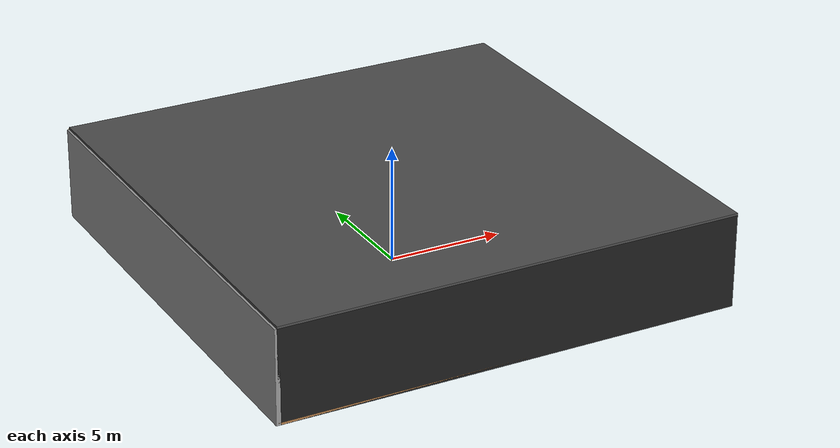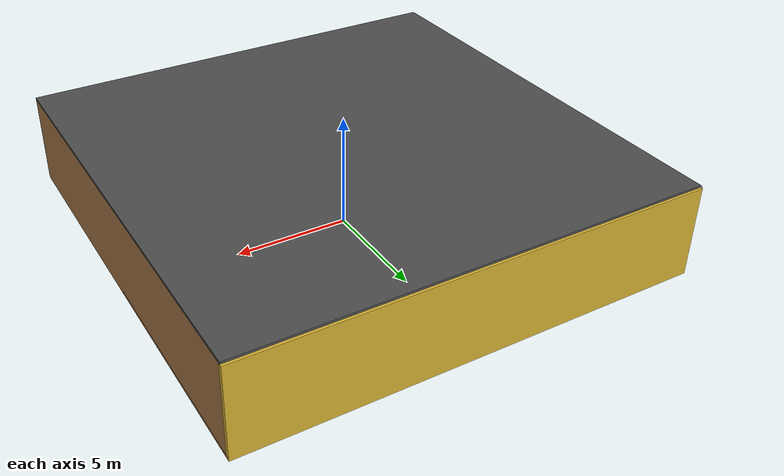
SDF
<sdf version="1.4">
 <world name="default">
  <physics type="ode">
   <max_step_size>0.001</max_step_size>
   <real_time_factor>1</real_time_factor>
   <real_time_update_rate>1000</real_time_update_rate>
   <gravity>0 0 -9.8</gravity>
  </physics>
  <scene><ambient>0.4 0.4 0.4 1</ambient><background>0.7 0.7 0.7 1</background><shadows>1</shadows></scene>
  <model name="Surrounding">
   <static>1</static>
   <link name="Ceiling">
    <collision name="Ceiling_Collision"><geometry><box><size>20 20 0.1</size></box></geometry></collision>
    <visual name="Ceiling_Visual">
     <geometry><box><size>20 20 0.1</size></box></geometry>
     <material>
      <script><uri>file://media/materials/scripts/gazebo.material</uri><name>Gazebo/Road</name></script>
     </material>
    </visual>
    <pose>0 0 4.05 0 0 0</pose>
   </link>
   <link name="Wall_South">
    <collision name="Wall_South_Collision">
     <geometry><box><size>20 0 4</size></box></geometry>
     <pose>0 0 2 0 -0 0</pose>
    </collision>
    <visual name="Wall_South_Visual">
     <pose>0 0 2 0 -0 0</pose>
     <geometry><box><size>20 0 4</size></box></geometry>
     <material>
      <script><uri>file://media/materials/scripts/gazebo.material</uri><name>Gazebo/FlatBlack</name></script>
     </material>
    </visual>
    <velocity_decay><linear>0</linear><angular>0</angular></velocity_decay>
    <pose>0 -10 0 0 -0 0</pose>
   </link>
   <link name="Wall_East">
    <collision name="Wall_21_Collision">
     <geometry><box><size>20 0 4</size></box></geometry>
     <pose>0 0 2 0 -0 0</pose>
    </collision>
    <visual name="Wall_21_Visual">
     <pose>0 0 2 0 -0 0</pose>
     <geometry><box><size>20 0 4</size></box></geometry>
     <material>
      <script><uri>file://media/materials/scripts/gazebo.material</uri><name>Gazebo/WoodPallet</name></script>
     </material>
    </visual>
    <velocity_decay><linear>0</linear><angular>0</angular></velocity_decay>
    <pose>10 0 0 0 -0 1.5708</pose>
   </link>
   <link name="Wall_North">
    <collision name="Wall_22_Collision">
     <geometry><box><size>20 0.2 4</size></box></geometry>
     <pose>0 0 2 0 -0 0</pose>
    </collision>
    <visual name="Wall_22_Visual">
     <pose>0 0 2 0 -0 0</pose>
     <geometry><box><size>20 0.2 4</size></box></geometry>
     <material>
      <script><uri>file://media/materials/scripts/gazebo.material</uri><name>Gazebo/Gold</name></script>
     </material>
    </visual>
    <velocity_decay><linear>0</linear><angular>0</angular></velocity_decay>
    <pose>0 10 0 0 -0 0</pose>
   </link>
   <link name="Wall_West">
    <collision name="Wall_23_Collision">
     <geometry><box><size>20 0.2 4</size></box></geometry>
     <pose>0 0 2 0 -0 0</pose>
    </collision>
    <visual name="Wall_23_Visual">
     <pose>0 0 2 0 -0 0</pose>
     <geometry><box><size>20 0.2 4</size></box></geometry>
     <material>
      <script><uri>file://media/materials/scripts/gazebo.material</uri><name>Gazebo/Grey</name></script>
     </material>
    </visual>
    <velocity_decay><linear>0</linear><angular>0</angular></velocity_decay>
    <pose>-10 0 0 0 0 -1.5708</pose>
   </link>
   <link name="Ground_link">
    <collision name="collision">
     <pose>0 0 .05 0 -0 0</pose>
     <geometry><box><size>20 20 0.1</size></box></geometry>
    </collision>
    <visual name="visual">
     <pose>0 0 .05 0 -0 0</pose>
     <geometry><box><size>20 20 0.1</size></box></geometry>
     <material>
      <script><uri>file://media/materials/scripts/gazebo.material</uri><name>Gazebo/WoodPallet</name></script>
     </material>
    </visual>
   </link>
   <static>1</static>
  </model>
  <spherical_coordinates>
   <surface_model>EARTH_WGS84</surface_model>
   <latitude_deg>0</latitude_deg>
   <longitude_deg>0</longitude_deg>
   <elevation>0</elevation>
   <heading_deg>0</heading_deg>
  </spherical_coordinates>
  <light name="lightball_0" type="diffuse">
   <diffuse>0.8 0.8 0.8 1</diffuse>
   <specular>0.2 0.2 0.2 1</specular>
   <attenuation>
    <range>100</range>
    <constant>0.7</constant>
    <linear>0.01</linear>
    <quadratic>0.001</quadratic>
   </attenuation>
   <direction>-0.5 0.1 -0.9</direction>
   <pose>4.670535682 3.35538823793 1.07701045946 0 0 0</pose>
  </light>
  <light name="lightball_1" type="diffuse">
   <diffuse>0.8 0.8 0.8 1</diffuse>
   <specular>0.2 0.2 0.2 1</specular>
   <attenuation>
    <range>100</range>
    <constant>0.7</constant>
    <linear>0.01</linear>
    <quadratic>0.001</quadratic>
   </attenuation>
   <direction>-0.5 0.1 -0.9</direction>
   <pose>7.19023421513 3.34421855786 2.08110879706 0 0 0</pose>
  </light>
  <light name="lightball_2" type="diffuse">
   <diffuse>0.8 0.8 0.8 1</diffuse>
   <specular>0.2 0.2 0.2 1</specular>
   <attenuation>
    <range>100</range>
    <constant>0.7</constant>
    <linear>0.01</linear>
    <quadratic>0.001</quadratic>
   </attenuation>
   <direction>-0.5 0.1 -0.9</direction>
   <pose>-4.35918316932 -7.38716698542 1.37079365291 0 0 0</pose>
  </light>
  <light name="lightball_3" type="diffuse">
   <diffuse>0.8 0.8 0.8 1</diffuse>
   <specular>0.2 0.2 0.2 1</specular>
   <attenuation>
    <range>100</range>
    <constant>0.7</constant>
    <linear>0.01</linear>
    <quadratic>0.001</quadratic>
   </attenuation>
   <direction>-0.5 0.1 -0.9</direction>
   <pose>2.99853240388 -9.29846418608 3.26567934377 0 0 0</pose>
  </light>
  <light name="lightball_4" type="diffuse">
   <diffuse>0.8 0.8 0.8 1</diffuse>
   <specular>0.2 0.2 0.2 1</specular>
   <attenuation>
    <range>100</range>
    <constant>0.7</constant>
    <linear>0.01</linear>
    <quadratic>0.001</quadratic>
   </attenuation>
   <direction>-0.5 0.1 -0.9</direction>
   <pose>-8.10080953296 -8.78956583469 2.53580956276 0 0 0</pose>
  </light>
  <light name="lightball_5" type="diffuse">
   <diffuse>0.8 0.8 0.8 1</diffuse>
   <specular>0.2 0.2 0.2 1</specular>
   <attenuation>
    <range>100</range>
    <constant>0.7</constant>
    <linear>0.01</linear>
    <quadratic>0.001</quadratic>
   </attenuation>
   <direction>-0.5 0.1 -0.9</direction>
   <pose>-5.23644273463 1.05423782765 3.63162161116 0 0 0</pose>
  </light>
  <light name="lightball_6" type="diffuse">
   <diffuse>0.8 0.8 0.8 1</diffuse>
   <specular>0.2 0.2 0.2 1</specular>
   <attenuation>
    <range>100</range>
    <constant>0.7</constant>
    <linear>0.01</linear>
    <quadratic>0.001</quadratic>
   </attenuation>
   <direction>-0.5 0.1 -0.9</direction>
   <pose>3.22951867783 -1.52819210657 1.18383274424 0 0 0</pose>
  </light>
  <light name="lightball_7" type="diffuse">
   <diffuse>0.8 0.8 0.8 1</diffuse>
   <specular>0.2 0.2 0.2 1</specular>
   <attenuation>
    <range>100</range>
    <constant>0.7</constant>
    <linear>0.01</linear>
    <quadratic>0.001</quadratic>
   </attenuation>
   <direction>-0.5 0.1 -0.9</direction>
   <pose>1.11288941308 5.51236257011 2.42955596633 0 0 0</pose>
  </light>
  <light name="lightball_8" type="diffuse">
   <diffuse>0.8 0.8 0.8 1</diffuse>
   <specular>0.2 0.2 0.2 1</specular>
   <attenuation>
    <range>100</range>
    <constant>0.7</constant>
    <linear>0.01</linear>
    <quadratic>0.001</quadratic>
   </attenuation>
   <direction>-0.5 0.1 -0.9</direction>
   <pose>-2.9359103745 -0.184671942982 1.01398777418 0 0 0</pose>
  </light>
  <light name="lightball_9" type="diffuse">
   <diffuse>0.8 0.8 0.8 1</diffuse>
   <specular>0.2 0.2 0.2 1</specular>
   <attenuation>
    <range>100</range>
    <constant>0.7</constant>
    <linear>0.01</linear>
    <quadratic>0.001</quadratic>
   </attenuation>
   <direction>-0.5 0.1 -0.9</direction>
   <pose>1.70876813102 0.562633939044 1.54967685274 0 0 0</pose>
  </light>
  <light name="lightball_10" type="diffuse">
   <diffuse>0.8 0.8 0.8 1</diffuse>
   <specular>0.2 0.2 0.2 1</specular>
   <attenuation>
    <range>100</range>
    <constant>0.7</constant>
    <linear>0.01</linear>
    <quadratic>0.001</quadratic>
   </attenuation>
   <direction>-0.5 0.1 -0.9</direction>
   <pose>-0.521019412657 -1.402812793 3.24765934817 0 0 0</pose>
  </light>
  <light name="lightball_11" type="diffuse">
   <diffuse>0.8 0.8 0.8 1</diffuse>
   <specular>0.2 0.2 0.2 1</specular>
   <attenuation>
    <range>100</range>
    <constant>0.7</constant>
    <linear>0.01</linear>
    <quadratic>0.001</quadratic>
   </attenuation>
   <direction>-0.5 0.1 -0.9</direction>
   <pose>0.0696357933453 -1.51006247542 3.32742756264 0 0 0</pose>
  </light>
  <light name="lightball_12" type="diffuse">
   <diffuse>0.8 0.8 0.8 1</diffuse>
   <specular>0.2 0.2 0.2 1</specular>
   <attenuation>
    <range>100</range>
    <constant>0.7</constant>
    <linear>0.01</linear>
    <quadratic>0.001</quadratic>
   </attenuation>
   <direction>-0.5 0.1 -0.9</direction>
   <pose>-2.61473822572 -4.98930388849 0.837477595106 0 0 0</pose>
  </light>
  <light name="lightball_13" type="diffuse">
   <diffuse>0.8 0.8 0.8 1</diffuse>
   <specular>0.2 0.2 0.2 1</specular>
   <attenuation>
    <range>100</range>
    <constant>0.7</constant>
    <linear>0.01</linear>
    <quadratic>0.001</quadratic>
   </attenuation>
   <direction>-0.5 0.1 -0.9</direction>
   <pose>-7.31501952054 -2.97302791595 3.29991057386 0 0 0</pose>
  </light>
  <include><uri>model://table</uri><pose>-7.59341123761 -6.91949858143 0 0 0 0.751912963133</pose></include>
  <include><uri>model://cabinet</uri><pose>-4.10075158483 -1.80247829027 0 0 0 0.281549820063</pose></include>
  <include><uri>model://cabinet</uri><pose>-0.85496463331 4.15140819931 0 0 0 0.873105150449</pose></include>
  <include><uri>model://cabinet</uri><pose>1.41582942454 -4.91491825972 0 0 0 1.74119111678</pose></include>
  <include><uri>model://cabinet</uri><pose>3.75656891365 1.77333846181 0 0 0 1.54581586459</pose></include>
 </world>
</sdf>

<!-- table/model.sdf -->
<sdf version="1.5">
  <model name="table">
    <static>true</static>
    <link name="link">
      <collision name="surface">
        <pose>0 0 1.0 0 0 0</pose>
        <geometry>
          <box>
            <size>1.5 0.8 0.03</size>
          </box>
        </geometry>
        <surface>
          <friction>
            <ode>
              <mu>0.6</mu>
              <mu2>0.6</mu2>
            </ode>
          </friction>
        </surface>
      </collision>
      <visual name="visual1">
        <pose>0 0 1.0 0 0 0</pose>
        <geometry>
          <box>
            <size>1.5 0.8 0.03</size>
          </box>
        </geometry>
        <material>
          <script>
            <uri>model://media/materials/scripts/gazebo.material</uri>
            <name>Gazebo/Wood</name>
          </script>
        </material>
      </visual>
      <collision name="front_left_leg">
        <pose>0.68 0.38 0.5 0 0 0</pose>
        <geometry>
          <cylinder>
            <radius>0.02</radius>
            <length>1.0</length>
          </cylinder>
        </geometry>
      </collision>
      <visual name="front_left_leg">
        <pose>0.68 0.38 0.5 0 0 0</pose>
        <geometry>
          <cylinder>
            <radius>0.02</radius>
            <length>1.0</length>
          </cylinder>
        </geometry>
        <material>
          <script>
            <uri>model://media/materials/scripts/gazebo.material</uri>
            <name>Gazebo/Grey</name>
          </script>
        </material>
      </visual>
      <collision name="front_right_leg">
        <pose>0.68 -0.38 0.5 0 0 0</pose>
        <geometry>
          <cylinder>
            <radius>0.02</radius>
            <length>1.0</length>
          </cylinder>
        </geometry>
      </collision>
      <visual name="front_right_leg">
        <pose>0.68 -0.38 0.5 0 0 0</pose>
        <geometry>
          <cylinder>
            <radius>0.02</radius>
            <length>1.0</length>
          </cylinder>
        </geometry>
        <material>
          <script>
            <uri>model://media/materials/scripts/gazebo.material</uri>
            <name>Gazebo/Grey</name>
          </script>
        </material>
      </visual>
      <collision name="back_right_leg">
        <pose>-0.68 -0.38 0.5 0 0 0</pose>
        <geometry>
          <cylinder>
            <radius>0.02</radius>
            <length>1.0</length>
          </cylinder>
        </geometry>
      </collision>
      <visual name="back_right_leg">
        <pose>-0.68 -0.38 0.5 0 0 0</pose>
        <geometry>
          <cylinder>
            <radius>0.02</radius>
            <length>1.0</length>
          </cylinder>
        </geometry>
        <material>
          <script>
            <uri>model://media/materials/scripts/gazebo.material</uri>
            <name>Gazebo/Grey</name>
          </script>
        </material>
      </visual>
      <collision name="back_left_leg">
        <pose>-0.68 0.38 0.5 0 0 0</pose>
        <geometry>
          <cylinder>
            <radius>0.02</radius>
            <length>1.0</length>
          </cylinder>
        </geometry>
      </collision>
      <visual name="back_left_leg">
        <pose>-0.68 0.38 0.5 0 0 0</pose>
        <geometry>
          <cylinder>
            <radius>0.02</radius>
            <length>1.0</length>
          </cylinder>
        </geometry>
        <material>
          <script>
            <uri>model://media/materials/scripts/gazebo.material</uri>
            <name>Gazebo/Grey</name>
          </script>
        </material>
      </visual>
    </link>
  </model>
</sdf>

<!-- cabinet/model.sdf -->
<sdf version="1.5">
  <model name="cabinet">
    <static>true</static>
    <link name="cabinet_bottom_plate">
      <inertial>
        <pose>0 0 -1 0 0 0</pose>
        <inertia>
          <ixx>2.050000</ixx>
          <ixy>0</ixy>
          <ixz>0</ixz>
          <iyy>2.050000</iyy>
          <iyz>0</iyz>
          <izz>2.050000</izz>
        </inertia>
        <mass>25.000000</mass>
      </inertial>
      <collision name="cabinet_bottom_plate_geom">
        <pose>0 0 0.010000 0 0 0</pose>
        <geometry>
          <box>
            <size>0.450000 0.450000 0.020000</size>
          </box>
        </geometry>
      </collision>
      <visual name="cabinet_bottom_plate_geom_visual">
        <pose>0 0 0.010000 0 0 0</pose>
        <geometry>
          <box>
            <size>0.450000 0.450000 0.020000</size>
          </box>
        </geometry>
        <material>
          <script>
            <uri>model://media/materials/scripts/gazebo.material</uri>
            <name>Gazebo/Wood</name>
          </script>
        </material>
      </visual>
      <collision name="cabinet_bottom_plate_geom_cabinet_back_plate">
        <pose>0.235000 0 0.510000 0 0 0</pose>
        <geometry>
          <box>
            <size>0.020000 0.450000 1.020000</size>
          </box>
        </geometry>
      </collision>
      <visual name="cabinet_bottom_plate_geom_cabinet_back_plate_visual">
        <pose>0.235000 0 0.510000 0 0 0</pose>
        <geometry>
          <box>
            <size>0.020000 0.450000 1.020000</size>
          </box>
        </geometry>
        <material>
          <script>
            <uri>model://media/materials/scripts/gazebo.material</uri>
            <name>Gazebo/Wood</name>
          </script>
        </material>
      </visual>
      <collision name="cabinet_bottom_plate_geom_cabinet_left_plate">
        <pose>0 0.235000 0.510000 0 0 0</pose>
        <geometry>
          <box>
            <size>0.450000 0.020000 1.020000</size>
          </box>
        </geometry>
      </collision>
      <visual name="cabinet_bottom_plate_geom_cabinet_left_plate_visual">
        <pose>0 0.235000 0.510000 0 0 0</pose>
        <geometry>
          <box>
            <size>0.450000 0.020000 1.020000</size>
          </box>
        </geometry>
        <material>
          <script>
            <uri>model://media/materials/scripts/gazebo.material</uri>
            <name>Gazebo/Wood</name>
          </script>
        </material>
      </visual>
      <collision name="cabinet_bottom_plate_geom_cabinet_middle_plate">
        <pose>0 0 0.510000 0 0 0</pose>
        <geometry>
          <box>
            <size>0.450000 0.450000 0.020000</size>
          </box>
        </geometry>
      </collision>
      <visual name="cabinet_bottom_plate_geom_cabinet_middle_plate_visual">
        <pose>0 0 0.510000 0 0 0</pose>
        <geometry>
          <box>
            <size>0.450000 0.450000 0.020000</size>
          </box>
        </geometry>
        <material>
          <script>
            <uri>model://media/materials/scripts/gazebo.material</uri>
            <name>Gazebo/Wood</name>
          </script>
        </material>
      </visual>
      <collision name="cabinet_bottom_plate_geom_cabinet_right_plate">
        <pose>0 -0.235000 0.510000 0 0 0</pose>
        <geometry>
          <box>
            <size>0.450000 0.020000 1.020000</size>
          </box>
        </geometry>
      </collision>
      <visual name="cabinet_bottom_plate_geom_cabinet_right_plate_visual">
        <pose>0 -0.235000 0.510000 0 0 0</pose>
        <geometry>
          <box>
            <size>0.450000 0.020000 1.020000</size>
          </box>
        </geometry>
        <material>
          <script>
            <uri>model://media/materials/scripts/gazebo.material</uri>
            <name>Gazebo/Wood</name>
          </script>
        </material>
      </visual>
      <collision name="cabinet_bottom_plate_geom_cabinet_top_plate">
        <pose>0 0 1.010000 0 0 0</pose>
        <geometry>
          <box>
            <size>0.450000 0.450000 0.020000</size>
          </box>
        </geometry>
      </collision>
      <visual name="cabinet_bottom_plate_geom_cabinet_top_plate_visual">
        <pose>0 0 1.010000 0 0 0</pose>
        <geometry>
          <box>
            <size>0.450000 0.450000 0.020000</size>
          </box>
        </geometry>
        <material>
          <script>
            <uri>model://media/materials/scripts/gazebo.material</uri>
            <name>Gazebo/Wood</name>
          </script>
        </material>
      </visual>
    </link>
  </model>
</sdf>
